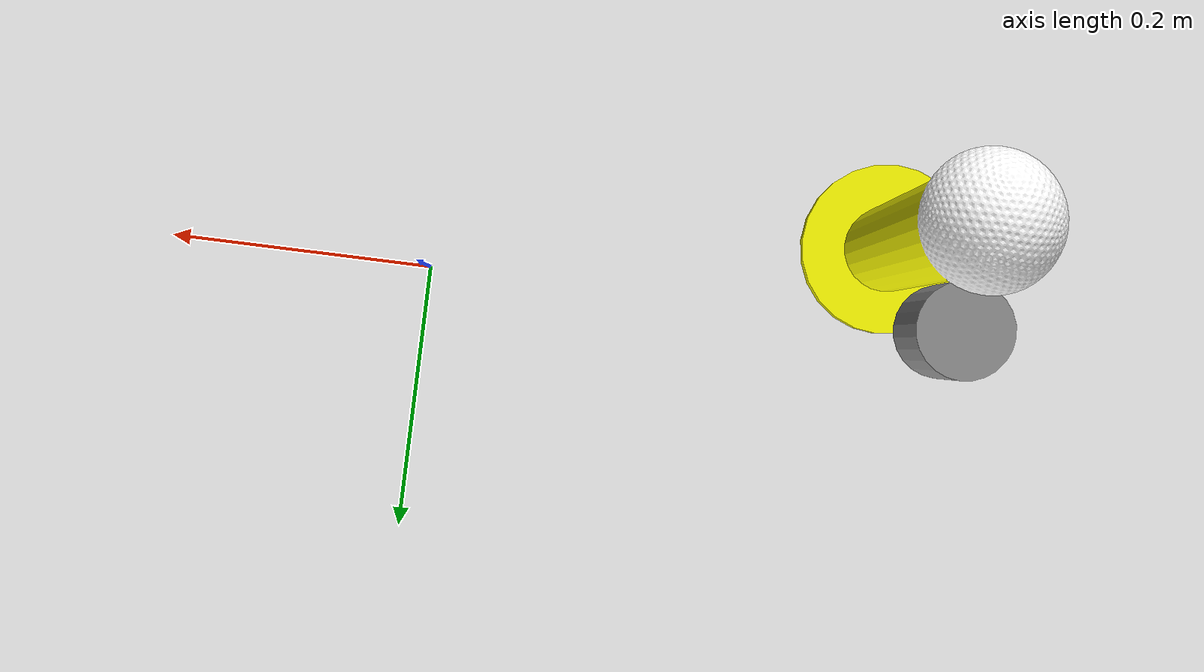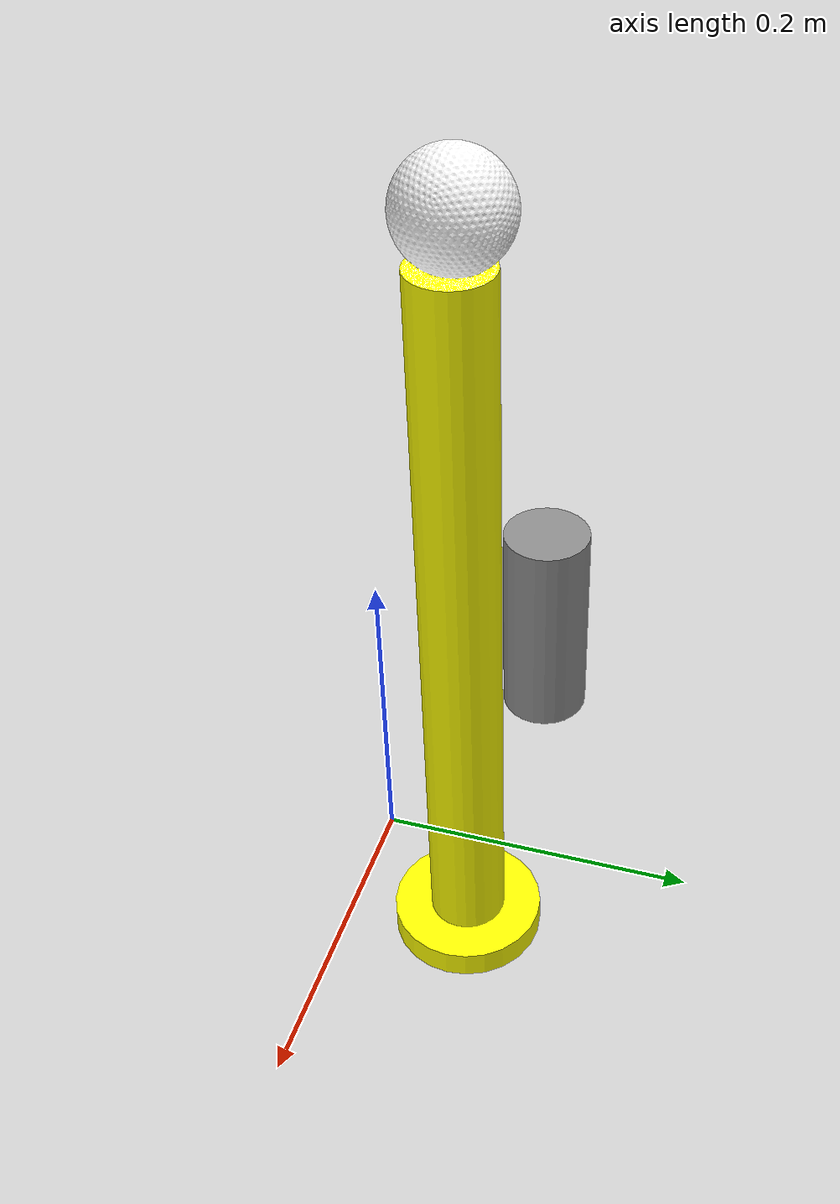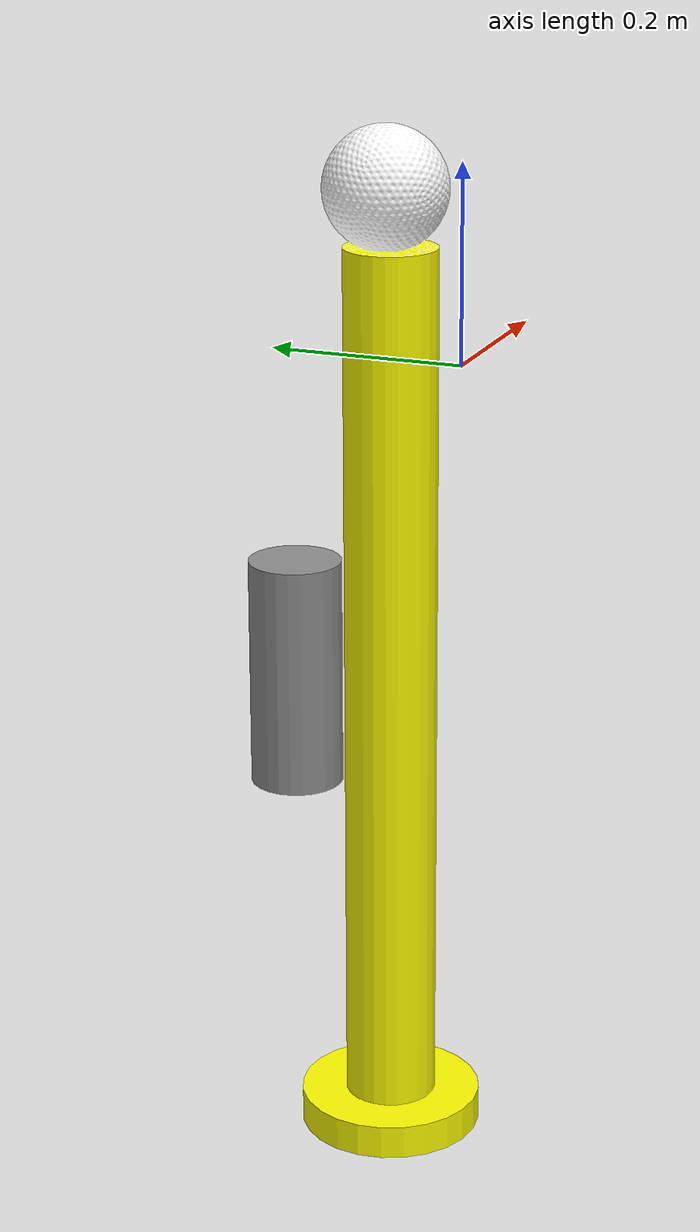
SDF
<?xml version="1.0" ?>
<sdf version="1.5">
  <model name="Yellow Flare">
    <static>0</static>
    <link name="link">
      <inertial>
        <pose>0.03 0.0 0.0035 0.0 0.0 0.0</pose>
        <mass> 0.4 </mass>
        <inertia>
          <ixx> 0.0</ixx>
          <ixy> 0.0 </ixy>
          <ixz> 0.0 </ixz>
          <iyy> 0.0 </iyy>
          <iyz> 0.0 </iyz>
          <izz> 0.0 </izz>
        </inertia>
      </inertial>
      <collision name="collision">
        <geometry>
          <mesh>
            <uri>model://yellow_Flare/meshes/Yellow_flare.dae</uri>
          </mesh>
        </geometry>
      </collision>
      <visual name="visual">
        <geometry>
          <mesh>
            <uri>model://yellow_Flare/meshes/Yellow_flare.dae</uri>
          </mesh>
        </geometry>
      </visual>
    </link>
  </model>
</sdf>
